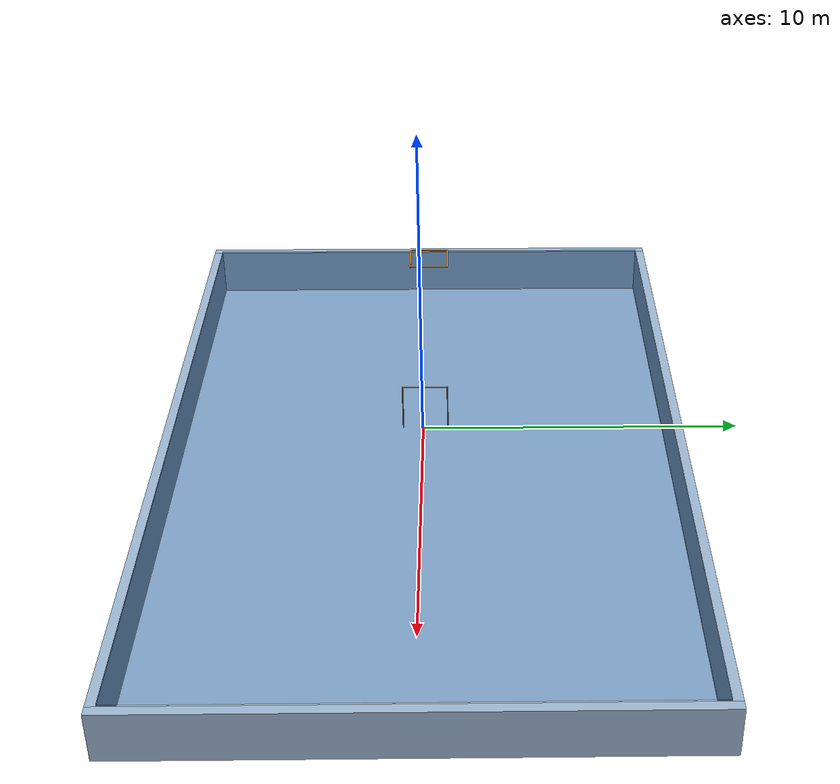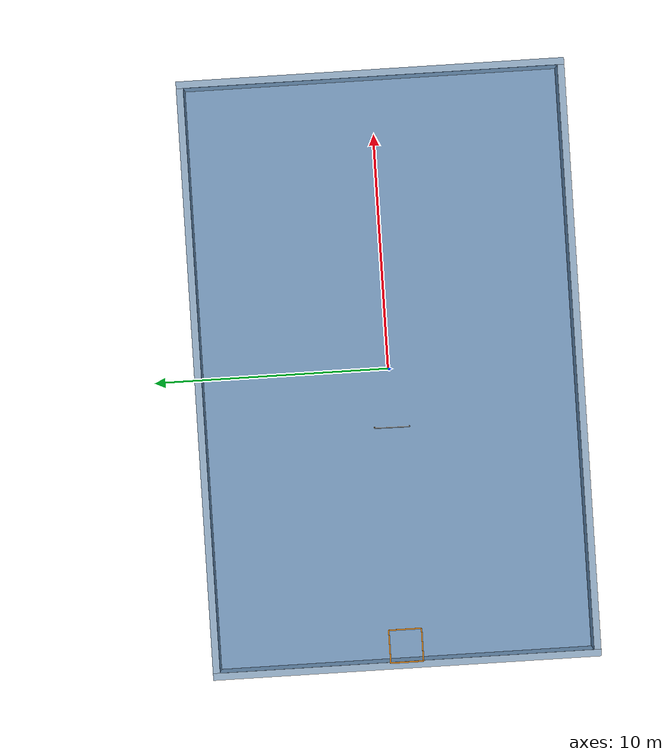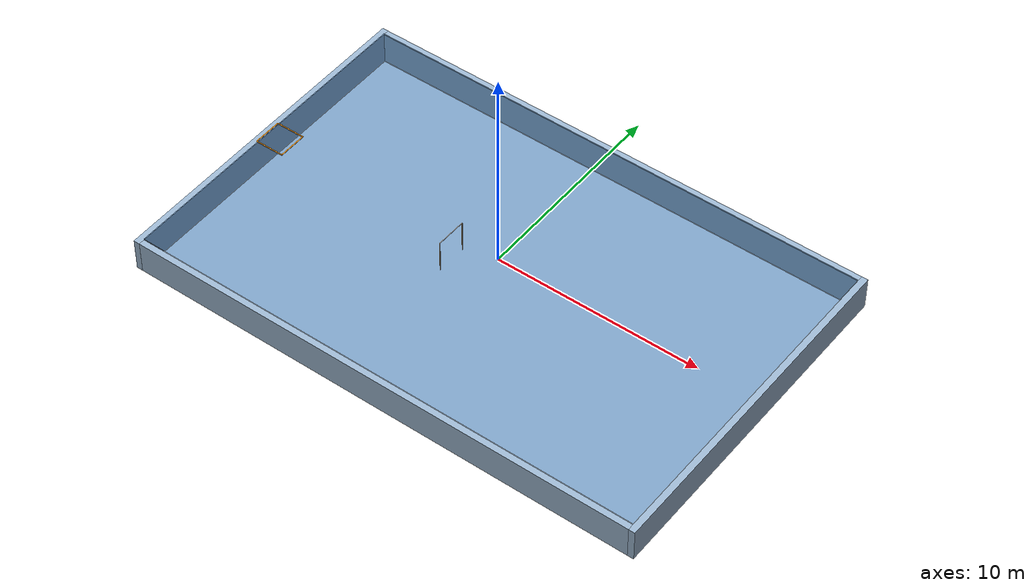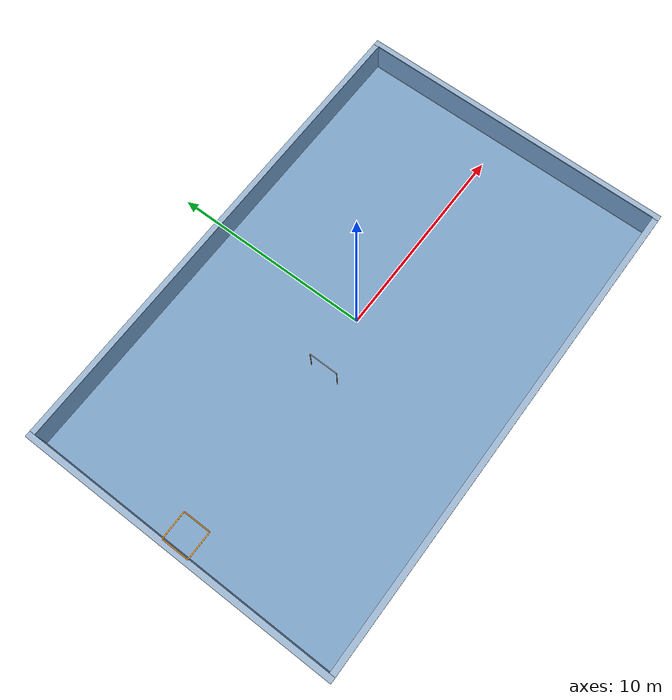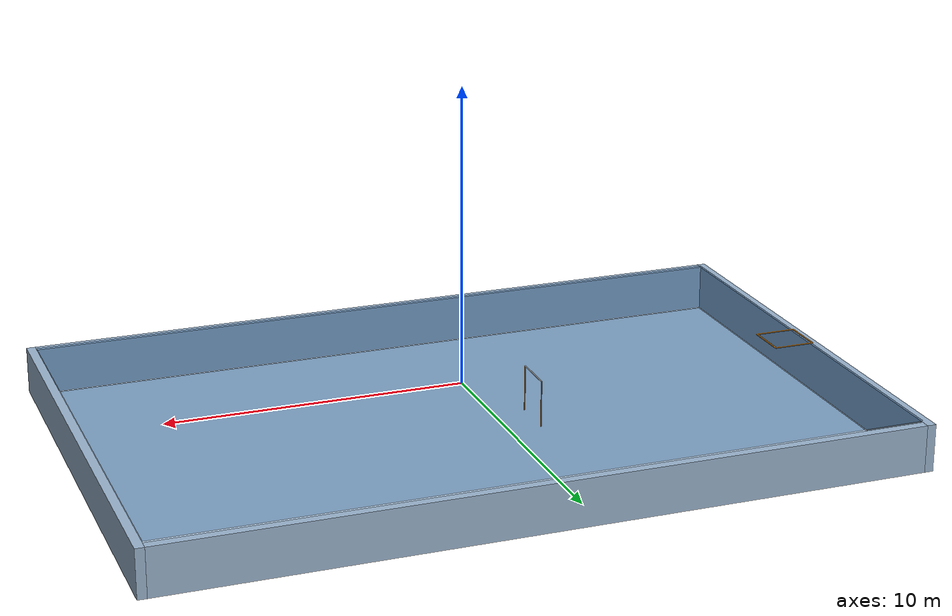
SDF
<sdf version="1.8">
 <world name="sauvc_competition_world">
  <plugin filename="gz-sim-physics-system" name="gz::sim::systems::Physics"/>
  <plugin filename="gz-sim-user-commands-system" name="gz::sim::systems::UserCommands"/>
  <plugin filename="gz-sim-scene-broadcaster-system" name="gz::sim::systems::SceneBroadcaster"/>
  <plugin filename="gz-sim-sensors-system" name="gz::sim::systems::Sensors">
   <render_engine>ogre2</render_engine>
  </plugin>
  <plugin filename="libgz-sim-imu-system.so" name="gz::sim::systems::Imu"/>
  <plugin filename="gz-sim-buoyancy-system" name="gz::sim::systems::Buoyancy">
   <graded_buoyancy>
    <default_density>1000</default_density>
    <density_change><above_depth>0</above_depth><density>1.2</density></density_change>
   </graded_buoyancy>
   <enable>bluerov2</enable>
  </plugin>
  <gravity>0 0 -9.81</gravity>
  <magnetic_field>6e-6 2.3e-5 -4.2e-5</magnetic_field>
  <atmosphere type="adiabatic"/>
  <scene>
   <ambient>0.3 0.4 0.5 1</ambient>
   <background>0.1 0.3 0.5 1</background>
   <shadows>true</shadows>
   <fog><color>0.2 0.4 0.5 1</color><type>linear</type><start>1</start><end>30</end><density>0.02</density></fog>
  </scene>
  <physics name="default" type="dart">
   <max_step_size>0.001</max_step_size>
   <real_time_factor>1.0</real_time_factor>
   <real_time_update_rate>1000</real_time_update_rate>
  </physics>
  <light type="directional" name="sun">
   <pose>0 0 10 0 0 0</pose>
   <diffuse>0.8 0.8 0.8 1</diffuse>
   <specular>0.2 0.2 0.2 1</specular>
   <direction>-0.5 0.1 -0.9</direction>
  </light>
  <light type="directional" name="underwater_light">
   <cast_shadows>false</cast_shadows>
   <pose>0 0 5 0 0 0</pose>
   <diffuse>0.6 0.7 0.8 1</diffuse>
   <specular>0.3 0.3 0.4 1</specular>
   <direction>0 0.2 -1</direction>
  </light>
  <model name="pool_structure">
   <static>true</static>
   <pose>0 0 -1.65 0 0 0</pose>
   <include><uri>model://pool_floor</uri></include>
   <link name="wall_east">
    <pose>12.65 0 0.8 0 0 0</pose>
    <collision name="collision"><geometry><box><size>0.3 16.6 1.6</size></box></geometry></collision>
    <visual name="visual">
     <geometry><box><size>0.3 16.6 1.6</size></box></geometry>
     <material>
      <ambient>0.5 0.6 0.7 1</ambient>
      <diffuse>0.6 0.7 0.8 1</diffuse>
      <specular>0.2 0.2 0.2 1</specular>
     </material>
    </visual>
   </link>
   <link name="wall_west">
    <pose>-12.65 0 0.8 0 0 0</pose>
    <collision name="collision"><geometry><box><size>0.3 16.6 1.6</size></box></geometry></collision>
    <visual name="visual">
     <geometry><box><size>0.3 16.6 1.6</size></box></geometry>
     <material>
      <ambient>0.5 0.6 0.7 1</ambient>
      <diffuse>0.6 0.7 0.8 1</diffuse>
      <specular>0.2 0.2 0.2 1</specular>
     </material>
    </visual>
   </link>
   <link name="wall_north">
    <pose>0 8.15 0.8 0 0 0</pose>
    <collision name="collision"><geometry><box><size>25 0.3 1.6</size></box></geometry></collision>
    <visual name="visual">
     <geometry><box><size>25 0.3 1.6</size></box></geometry>
     <material>
      <ambient>0.5 0.6 0.7 1</ambient>
      <diffuse>0.6 0.7 0.8 1</diffuse>
      <specular>0.2 0.2 0.2 1</specular>
     </material>
    </visual>
   </link>
   <link name="wall_south">
    <pose>0 -8.15 0.8 0 0 0</pose>
    <collision name="collision"><geometry><box><size>25 0.3 1.6</size></box></geometry></collision>
    <visual name="visual">
     <geometry><box><size>25 0.3 1.6</size></box></geometry>
     <material>
      <ambient>0.5 0.6 0.7 1</ambient>
      <diffuse>0.6 0.7 0.8 1</diffuse>
      <specular>0.2 0.2 0.2 1</specular>
     </material>
    </visual>
   </link>
  </model>
  <model name="water_surface">
   <static>true</static>
   <link name="water_link">
    <visual name="water_visual">
     <geometry><box><size>25 16 0.01</size></box></geometry>
     <material>
      <ambient>0.1 0.3 0.5 0.6</ambient>
      <diffuse>0.2 0.4 0.6 0.4</diffuse>
      <specular>0.8 0.8 0.8 1</specular>
     </material>
     <transparency>0.5</transparency>
    </visual>
   </link>
  </model>
  <include>
   <uri>model://starting_zone</uri>
   <name>starting_zone</name>
   <pose>-11.83 0 0 0 0 0</pose>
   <static>true</static>
  </include>
  <include>
   <uri>model://gate_qualification</uri>
   <name>q_gate</name>
   <pose>-2.5 0 0 0 0 1.56</pose>
   <static>true</static>
  </include>
 </world>
</sdf>

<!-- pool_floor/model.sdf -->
<sdf version="1.8">
  <!-- SAUVC 2026 Pool Floor
       Dimensions: 25m x 16m with realistic pool tiles texture
  -->
  <model name="pool_floor">
    <static>true</static>

    <link name="floor">
      <pose>0 0 0 0 0 0</pose>
      <inertial>
        <mass>1000</mass>
        <inertia>
          <ixx>1000</ixx><ixy>0</ixy><ixz>0</ixz>
          <iyy>1000</iyy><iyz>0</iyz><izz>1000</izz>
        </inertia>
      </inertial>

      <visual name="floor_visual">
        <geometry>
          <plane>
            <normal>0 0 1</normal>
            <size>25.0 16.0</size>
          </plane>
        </geometry>
        <material>
          <ambient>0.7 0.8 0.9 1</ambient>
          <diffuse>0.7 0.8 0.9 1</diffuse>
          <specular>0.3 0.3 0.3 1</specular>
          <emissive>0 0 0 1</emissive>
          <pbr>
            <metal>
              <albedo_map>model://pool_floor/materials/textures/pool_bottom_tiles_half_size.png</albedo_map>
            </metal>
          </pbr>
        </material>
      </visual>

      <collision name="floor_collision">
        <geometry>
          <box>
            <size>25.0 16.0 0.1</size>
          </box>
        </geometry>
      </collision>
    </link>

  </model>
</sdf>

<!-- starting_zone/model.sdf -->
<sdf version="1.8">
  <!-- SAUVC 2026 Starting Zone
       140cm x 140cm marker at water surface
       Semi-transparent orange
  -->
  <model name="starting_zone">
    <static>true</static>

    <link name="marker">
      <pose>0 0 0.01 0 0 0</pose>
      <inertial>
        <mass>0.5</mass>
        <inertia>
          <ixx>0.01</ixx><ixy>0</ixy><ixz>0</ixz>
          <iyy>0.01</iyy><iyz>0</iyz><izz>0.01</izz>
        </inertia>
      </inertial>

      <!-- Outer frame -->
      <visual name="frame_north">
        <pose>0 0.7 0 0 0 0</pose>
        <geometry>
          <box>
            <size>1.4 0.05 0.02</size>
          </box>
        </geometry>
        <material>
          <ambient>1 0.5 0 1</ambient>
          <diffuse>1 0.6 0.1 1</diffuse>
        </material>
      </visual>

      <visual name="frame_south">
        <pose>0 -0.7 0 0 0 0</pose>
        <geometry>
          <box>
            <size>1.4 0.05 0.02</size>
          </box>
        </geometry>
        <material>
          <ambient>1 0.5 0 1</ambient>
          <diffuse>1 0.6 0.1 1</diffuse>
        </material>
      </visual>

      <visual name="frame_east">
        <pose>0.7 0 0 0 0 0</pose>
        <geometry>
          <box>
            <size>0.05 1.4 0.02</size>
          </box>
        </geometry>
        <material>
          <ambient>1 0.5 0 1</ambient>
          <diffuse>1 0.6 0.1 1</diffuse>
        </material>
      </visual>

      <visual name="frame_west">
        <pose>-0.7 0 0 0 0 0</pose>
        <geometry>
          <box>
            <size>0.05 1.4 0.02</size>
          </box>
        </geometry>
        <material>
          <ambient>1 0.5 0 1</ambient>
          <diffuse>1 0.6 0.1 1</diffuse>
        </material>
      </visual>
    </link>

  </model>
</sdf>

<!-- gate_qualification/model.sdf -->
<sdf version="1.8">
  <!-- SAUVC 2026 Qualification Gate
       Width: 150cm, Height: 1.6m (bottom of pool to water surface)
       Pole diameter: 4cm, Orange markings on port and starboard
  -->
  <model name="gate_qualification">
    <static>true</static>

    <!-- Top horizontal bar at water surface (z=0) -->
    <link name="top_bar">
      <pose>0 0 0 0 0 0</pose>
      <inertial>
        <mass>1.0</mass>
        <inertia>
          <ixx>0.01</ixx><ixy>0</ixy><ixz>0</ixz>
          <iyy>0.01</iyy><iyz>0</iyz><izz>0.01</izz>
        </inertia>
      </inertial>

      <visual name="top_bar_visual">
        <pose>0 0 0 0 1.5708 0</pose>
        <geometry>
          <cylinder>
            <radius>0.02</radius>
            <length>1.5</length>
          </cylinder>
        </geometry>
        <material>
          <ambient>0.9 0.9 0.9 1</ambient>
          <diffuse>1 1 1 1</diffuse>
          <specular>0.3 0.3 0.3 1</specular>
        </material>
      </visual>

      <collision name="top_bar_collision">
        <pose>0 0 0 0 1.5708 0</pose>
        <geometry>
          <cylinder>
            <radius>0.02</radius>
            <length>1.5</length>
          </cylinder>
        </geometry>
      </collision>
    </link>

    <!-- Left vertical post (port) - Orange -->
    <link name="post_left">
      <pose>-0.75 0 -0.8 0 0 0</pose>
      <inertial>
        <mass>0.5</mass>
        <inertia>
          <ixx>0.01</ixx><ixy>0</ixy><ixz>0</ixz>
          <iyy>0.01</iyy><iyz>0</iyz><izz>0.01</izz>
        </inertia>
      </inertial>

      <visual name="post_left_visual">
        <geometry>
          <cylinder>
            <radius>0.02</radius>
            <length>1.6</length>
          </cylinder>
        </geometry>
        <material>
          <ambient>1 0.5 0 1</ambient>
          <diffuse>1 0.55 0 1</diffuse>
          <specular>0.2 0.2 0.2 1</specular>
        </material>
      </visual>

      <collision name="post_left_collision">
        <geometry>
          <cylinder>
            <radius>0.02</radius>
            <length>1.6</length>
          </cylinder>
        </geometry>
      </collision>
    </link>

    <!-- Right vertical post (starboard) - Orange -->
    <link name="post_right">
      <pose>0.75 0 -0.8 0 0 0</pose>
      <inertial>
        <mass>0.5</mass>
        <inertia>
          <ixx>0.01</ixx><ixy>0</ixy><ixz>0</ixz>
          <iyy>0.01</iyy><iyz>0</iyz><izz>0.01</izz>
        </inertia>
      </inertial>

      <visual name="post_right_visual">
        <geometry>
          <cylinder>
            <radius>0.02</radius>
            <length>1.6</length>
          </cylinder>
        </geometry>
        <material>
          <ambient>1 0.5 0 1</ambient>
          <diffuse>1 0.55 0 1</diffuse>
          <specular>0.2 0.2 0.2 1</specular>
        </material>
      </visual>

      <collision name="post_right_collision">
        <geometry>
          <cylinder>
            <radius>0.02</radius>
            <length>1.6</length>
          </cylinder>
        </geometry>
      </collision>
    </link>

    <!-- Fixed joints -->
    <joint name="top_left_joint" type="fixed">
      <parent>top_bar</parent>
      <child>post_left</child>
    </joint>

    <joint name="top_right_joint" type="fixed">
      <parent>top_bar</parent>
      <child>post_right</child>
    </joint>

  </model>
</sdf>
